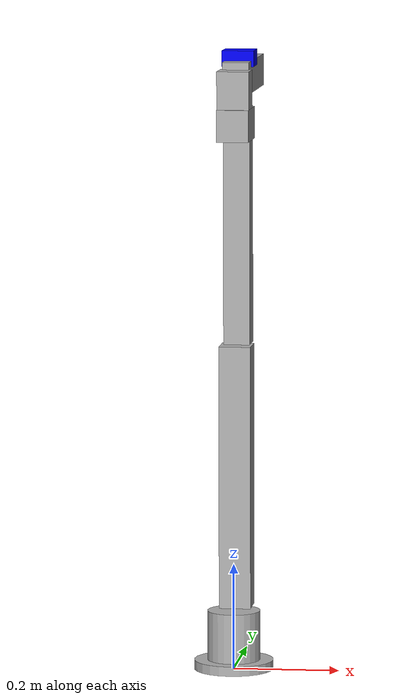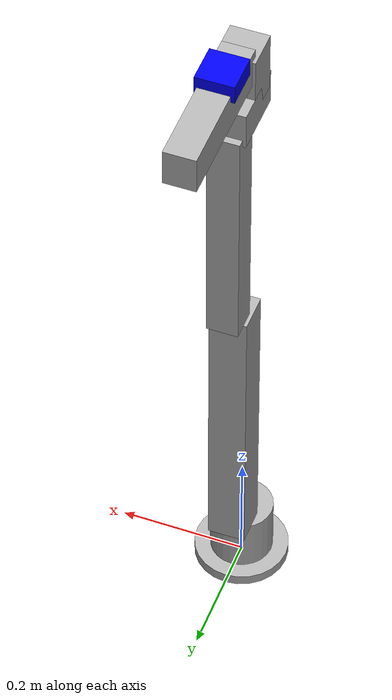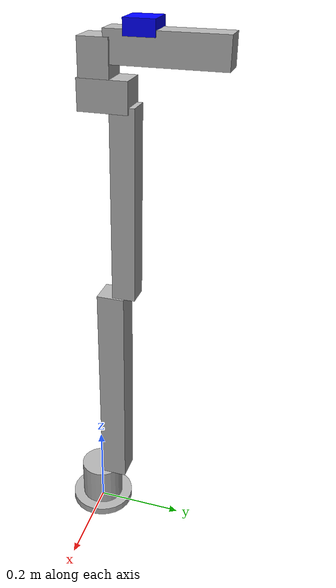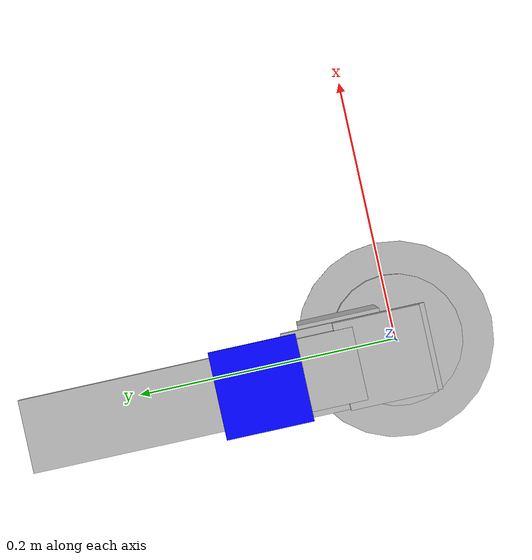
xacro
<?xml version="1.0"?>
<robot name="indomitus_arm" xmlns:xacro="http://www.ros.org/wiki/xacro">
  <xacro:arg name="end_effector" default="jaw"/>

  <xacro:include filename="$(find arm_description)/urdf/arm_macro_simple.xacro"/>

  <link name="world"/>

  <xacro:indomitus_arm parent_link="world">
    <origin xyz="0 0 0" rpy="0 0 0"/>
  </xacro:indomitus_arm>

</robot>

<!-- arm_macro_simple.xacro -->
<robot xmlns:xacro="http://www.ros.org/wiki/xacro">

  <xacro:arg name="use_fake_hardware" default="true"/>
  <xacro:arg name="end_effector" default="jaw"/>
  <xacro:arg name="sim" default="false"/>
  <!-- camera:=false drops the simulated camera sensor (the URDF link and
       frames stay). Camera rendering is the main real-time-factor cost
       when the GPU isn't doing the rendering. -->
  <xacro:arg name="camera" default="true"/>

  <xacro:macro name="indomitus_arm" params="parent_link *origin">

    <material name="light_grey">
      <color rgba="0.7 0.7 0.7 1.0"/>
    </material>

    <xacro:macro name="dummy_inertia" params="mass">
      <inertial>
        <origin xyz="0 0 0" rpy="0 0 0"/>
        <mass value="${mass}"/>
        <inertia ixx="0.001" ixy="0.0" ixz="0.0" iyy="0.001" iyz="0.0" izz="0.001"/>
      </inertial>
    </xacro:macro>

    <xacro:macro name="box_geometry" params="size xyz">
      <visual>
        <origin xyz="${xyz}" rpy="0 0 0"/>
        <geometry><box size="${size}"/></geometry>
        <material name="light_grey"/>
      </visual>
      <collision>
        <origin xyz="${xyz}" rpy="0 0 0"/>
        <geometry><box size="${size}"/></geometry>
      </collision>
    </xacro:macro>

    <xacro:macro name="cylinder_geometry" params="radius length xyz">
      <visual>
        <origin xyz="${xyz}" rpy="0 0 0"/>
        <geometry><cylinder radius="${radius}" length="${length}"/></geometry>
        <material name="light_grey"/>
      </visual>
      <collision>
        <origin xyz="${xyz}" rpy="0 0 0"/>
        <geometry><cylinder radius="${radius}" length="${length}"/></geometry>
      </collision>
    </xacro:macro>

    <joint name="arm_mount_joint" type="fixed">
      <xacro:insert_block name="origin" />
      <parent link="${parent_link}"/>
      <child link="arm_mount_link"/>
    </joint>

    <link name="arm_mount_link">
      <xacro:cylinder_geometry radius="0.075" length="0.018" xyz="0 0 0.009"/>
      <xacro:dummy_inertia mass="1.0"/>
    </link>

    <joint name="arm_mount_base_joint" type="revolute">
      <parent link="arm_mount_link"/>
      <child link="arm_base_link"/>
      <origin xyz="0 0 0.018" rpy="0 0 0"/>
      <axis xyz="0 0 1"/>
      <limit lower="${-pi}" upper="${pi}" effort="100.0" velocity="1.0"/>
    </joint>

    <link name="arm_base_link">
      <xacro:cylinder_geometry radius="0.05" length="0.0945" xyz="0 0 0.047"/>
      <xacro:dummy_inertia mass="2.0"/>
    </link>

    <joint name="arm_base_shoulder_joint" type="revolute">
      <parent link="arm_base_link"/>
      <child link="arm_shoulder_link"/>
      <origin xyz="0 0.013 0.0945" rpy="0 0 ${-pi/2}"/>
      <axis xyz="1 0 0"/>
      <limit lower="${-pi/2}" upper="${pi}" effort="100.0" velocity="1.0"/>
    </joint>

    <link name="arm_shoulder_link">
      <xacro:box_geometry size="0.06 0.06 0.5" xyz="-0.0285 0 0.25"/>
      <xacro:dummy_inertia mass="1.5"/>
    </link>

    <joint name="arm_shoulder_forearm_joint" type="revolute">
      <parent link="arm_shoulder_link"/>
      <child link="arm_forearm_link"/>
      <origin xyz="-0.057 0 0.5" rpy="0 0 0"/>
      <axis xyz="1 0 0"/>
      <limit lower="${-pi/2}" upper="${pi/2}" effort="100.0" velocity="1.0"/>
    </joint>

    <link name="arm_forearm_link">
      <xacro:box_geometry size="0.05 0.05 0.4" xyz="0 0 0.2"/>
      <xacro:dummy_inertia mass="1.0"/>
    </link>

    <joint name="arm_forearm_wrist_1_joint" type="revolute">
      <parent link="arm_forearm_link"/>
      <child link="arm_wrist_1_link"/>
      <origin xyz="0.002175 0 0.4" rpy="${pi} ${pi} 0"/>
      <axis xyz="1 0 0"/>
      <limit lower="${-pi/2}" upper="${pi/2}" effort="100.0" velocity="1.0"/>
    </joint>

    <link name="arm_wrist_1_link">
      <xacro:box_geometry size="0.1 0.06 0.06" xyz="-0.034 0 0.018"/>
      <xacro:dummy_inertia mass="0.5"/>
    </link>

    <joint name="arm_wrist_1_wrist_2_joint" type="revolute">
      <parent link="arm_wrist_1_link"/>
      <child link="arm_wrist_2_link"/>
      <origin xyz="-0.067825 0 0.0353" rpy="0 ${pi/2} 0"/>
      <axis xyz="1 0 0"/>
      <limit lower="${-pi}" upper="${pi}" effort="100.0" velocity="1.0"/>
    </joint>

    <link name="arm_wrist_2_link">
      <xacro:box_geometry size="0.1 0.06 0.06" xyz="-0.034 0 0.018"/>
      <xacro:dummy_inertia mass="0.3"/>
    </link>

    <joint name="arm_wrist_2_end_effector_joint" type="revolute">
      <parent link="arm_wrist_2_link"/>
      <child link="arm_end_effector_link"/>
      <origin xyz="-0.067825 0 0.0353" rpy="${-pi/2} 0 ${-pi/2}"/>
      <axis xyz="0 1 0"/>
      <limit lower="${-pi}" upper="${pi}" effort="100.0" velocity="1.0"/>
    </joint>

    <link name="arm_end_effector_link">
      <xacro:if value="${'$(arg end_effector)' == 'jaw'}">
        <xacro:box_geometry size="0.05 0.23 0.06" xyz="0 -0.115 0"/>
      </xacro:if>

      <xacro:if value="${'$(arg end_effector)' == 'other_tool'}">
      </xacro:if>

      <xacro:dummy_inertia mass="0.2"/>
    </link>

    <joint name="arm_tcp_joint" type="fixed">
      <parent link="arm_end_effector_link"/>
      <child link="arm_tcp_link"/>

      <xacro:if value="${'$(arg end_effector)' == 'jaw'}">
        <origin xyz="0 -0.23 0" rpy="0 0 0"/>
      </xacro:if>

      <xacro:if value="${'$(arg end_effector)' != 'jaw'}">
        <origin xyz="0 -0.23 0" rpy="0 0 0"/>
      </xacro:if>
    </joint>

    <link name="arm_tcp_link"/>

    <joint name="arm_camera_joint" type="fixed">
      <parent link="arm_end_effector_link"/>
      <child link="arm_camera_link"/>
      <origin xyz="-0.00110236 -0.0683370 -0.0340064" rpy="${pi} 0 ${-pi/2}"/>
    </joint>

    <link name="arm_camera_link">
      <visual>
        <geometry>
          <box size="0.06 0.06 0.03"/>
        </geometry>
        <material name="camera_blue">
          <color rgba="0.0 0.0 1.0 1.0"/>
        </material>
      </visual>

      <collision>
        <geometry>
          <box size="0.06 0.06 0.03"/>
        </geometry>
      </collision>
    </link>

    <ros2_control name="ArmSystem" type="system">
      <hardware>
        <xacro:if value="$(arg sim)">
          <plugin>gz_ros2_control/GazeboSimSystem</plugin>
        </xacro:if>
        <xacro:unless value="$(arg sim)">
          <xacro:if value="$(arg use_fake_hardware)">
            <plugin>mock_components/GenericSystem</plugin>
          </xacro:if>
          <xacro:unless value="$(arg use_fake_hardware)">
            <plugin>arm_hardware_interface/ArmCanSystem</plugin>
            <param name="can_interface">can0</param>
          </xacro:unless>
        </xacro:unless>
      </hardware>
      <xacro:macro name="arm_joint_control" params="joint_name">
        <joint name="${joint_name}">
          <command_interface name="position">
            <param name="min">${-pi}</param>
            <param name="max">${pi}</param>
          </command_interface>
          <state_interface name="position"/>
          <state_interface name="velocity"/>
        </joint>
      </xacro:macro>

      <xacro:arm_joint_control joint_name="arm_mount_base_joint"/>
      <xacro:arm_joint_control joint_name="arm_base_shoulder_joint"/>
      <xacro:arm_joint_control joint_name="arm_shoulder_forearm_joint"/>
      <xacro:arm_joint_control joint_name="arm_forearm_wrist_1_joint"/>
      <xacro:arm_joint_control joint_name="arm_wrist_1_wrist_2_joint"/>
      <xacro:arm_joint_control joint_name="arm_wrist_2_end_effector_joint"/>
    </ros2_control>

    <xacro:if value="$(arg sim)">
      <gazebo>
        <plugin filename="gz_ros2_control-system" name="gz_ros2_control::GazeboSimROS2ControlPlugin">
          <parameters>$(find arm_sim)/config/ros2_controllers.yaml</parameters>
        </plugin>
      </gazebo>

      <gazebo reference="arm_mount_link">
        <visual>
          <material>
            <ambient>0.7 0.7 0.7 1.0</ambient>
            <diffuse>0.7 0.7 0.7 1.0</diffuse>
            <specular>0.3 0.3 0.3 1.0</specular>
          </material>
        </visual>
      </gazebo>

      <gazebo reference="arm_base_link">
        <visual>
          <material>
            <ambient>0.7 0.7 0.7 1.0</ambient>
            <diffuse>0.7 0.7 0.7 1.0</diffuse>
            <specular>0.3 0.3 0.3 1.0</specular>
          </material>
        </visual>
      </gazebo>

      <gazebo reference="arm_shoulder_link">
        <visual>
          <material>
            <ambient>0.7 0.7 0.7 1.0</ambient>
            <diffuse>0.7 0.7 0.7 1.0</diffuse>
            <specular>0.3 0.3 0.3 1.0</specular>
          </material>
        </visual>
      </gazebo>

      <gazebo reference="arm_forearm_link">
        <visual>
          <material>
            <ambient>0.7 0.7 0.7 1.0</ambient>
            <diffuse>0.7 0.7 0.7 1.0</diffuse>
            <specular>0.3 0.3 0.3 1.0</specular>
          </material>
        </visual>
      </gazebo>

      <gazebo reference="arm_wrist_1_link">
        <visual>
          <material>
            <ambient>0.7 0.7 0.7 1.0</ambient>
            <diffuse>0.7 0.7 0.7 1.0</diffuse>
            <specular>0.3 0.3 0.3 1.0</specular>
          </material>
        </visual>
      </gazebo>

      <gazebo reference="arm_wrist_2_link">
        <visual>
          <material>
            <ambient>0.7 0.7 0.7 1.0</ambient>
            <diffuse>0.7 0.7 0.7 1.0</diffuse>
            <specular>0.3 0.3 0.3 1.0</specular>
          </material>
        </visual>
      </gazebo>

      <gazebo reference="arm_end_effector_link">
        <visual>
          <material>
            <ambient>0.7 0.7 0.7 1.0</ambient>
            <diffuse>0.7 0.7 0.7 1.0</diffuse>
            <specular>0.3 0.3 0.3 1.0</specular>
          </material>
        </visual>
      </gazebo>

      <xacro:if value="$(arg camera)">
      <gazebo reference="arm_camera_link">
        <sensor name="arm_camera" type="camera">
          <pose>0 0 0.03 0 0 0</pose>
          <camera>
            <horizontal_fov>1.047</horizontal_fov>
            <image>
              <width>640</width>
              <height>480</height>
              <format>R8G8B8</format>
            </image>
            <clip>
              <near>0.05</near>
              <far>15</far>
            </clip>
          </camera>
          <always_on>1</always_on>
          <update_rate>30</update_rate>
          <visualize>true</visualize>
          <topic>arm_camera/image_raw</topic>
        </sensor>
      </gazebo>
      </xacro:if>
    </xacro:if>

  </xacro:macro>
</robot>
